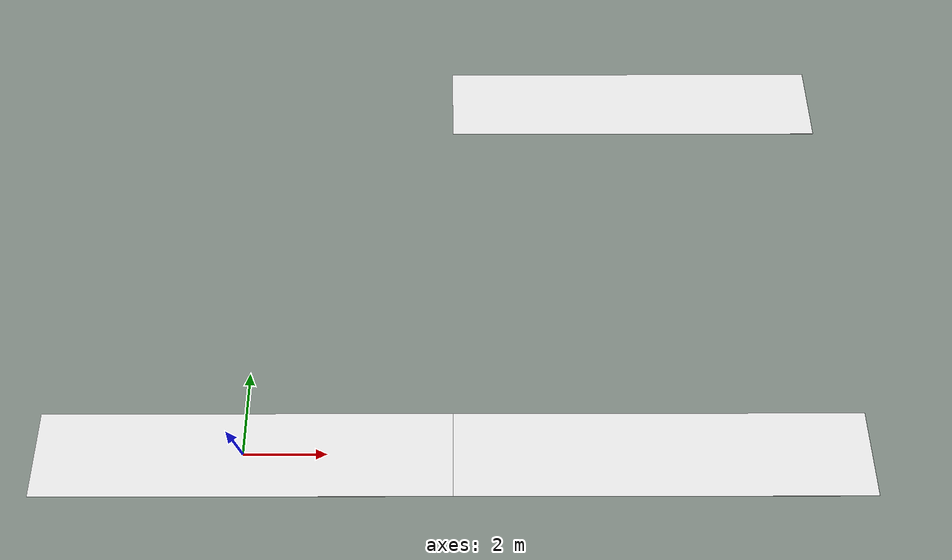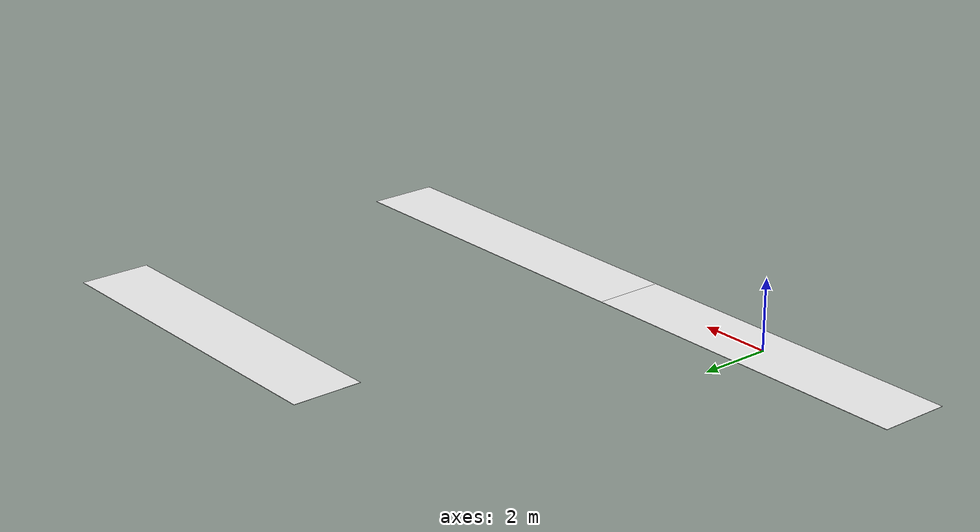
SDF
<sdf version="1.6"><world name="my_world"><model name="seg1"><link name="road_link"><collision name="road_collision"><geometry><box><size>10 2 0.01</size></box></geometry></collision><visual name="road_visual"><geometry><box><size>10 2 0.01</size></box></geometry><material><script><uri>file://media/materials/scripts/gazebo.material</uri><name>Gazebo/White</name></script></material><pose>0 0 0 0 0 0</pose></visual></link></model><model name="seg2"><link name="road_link"><collision name="road_collision"><geometry><box><size>10 2 0.01</size></box></geometry></collision><visual name="road_visual"><geometry><box><size>10 2 0.01</size></box></geometry><material><script><uri>file://media/materials/scripts/gazebo.material</uri><name>Gazebo/White</name></script></material><pose>10 0 0 0 0 0</pose></visual></link></model><model name="seg3"><link name="road_link"><collision name="road_collision"><geometry><box><size>10 2 0.01</size></box></geometry></collision><visual name="road_visual"><geometry><box><size>10 2 0.01</size></box></geometry><material><script><uri>file://media/materials/scripts/gazebo.material</uri><name>Gazebo/White</name></script></material><pose>10 10 0 0 0 0</pose></visual></link></model></world></sdf>
